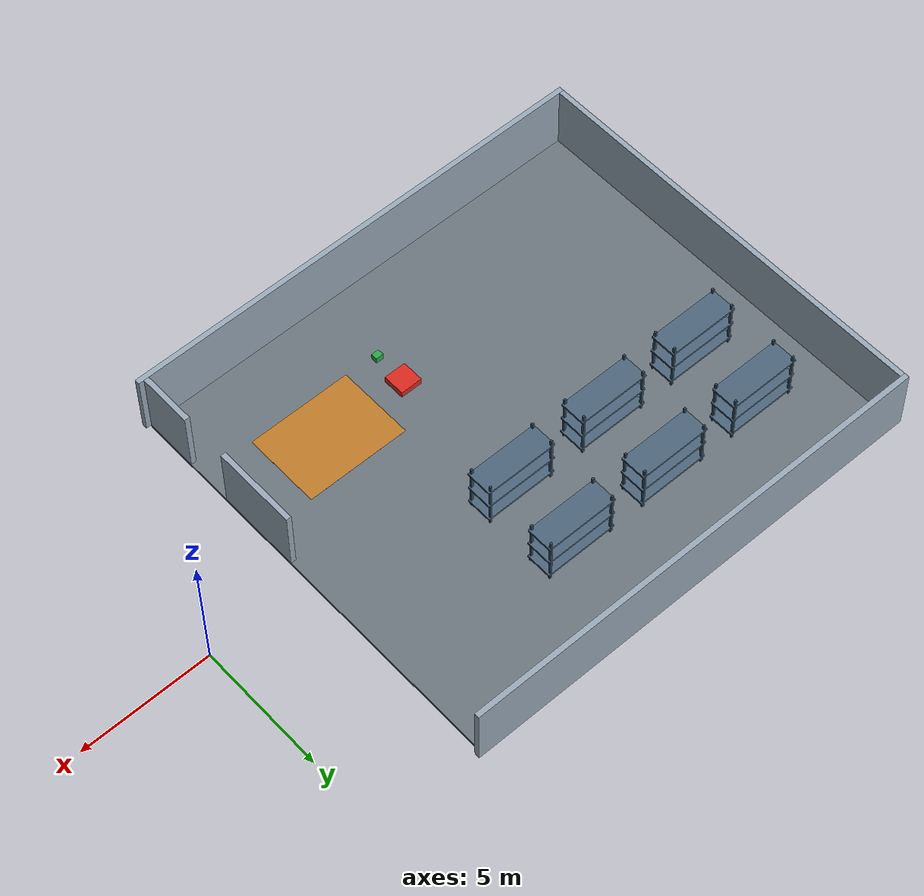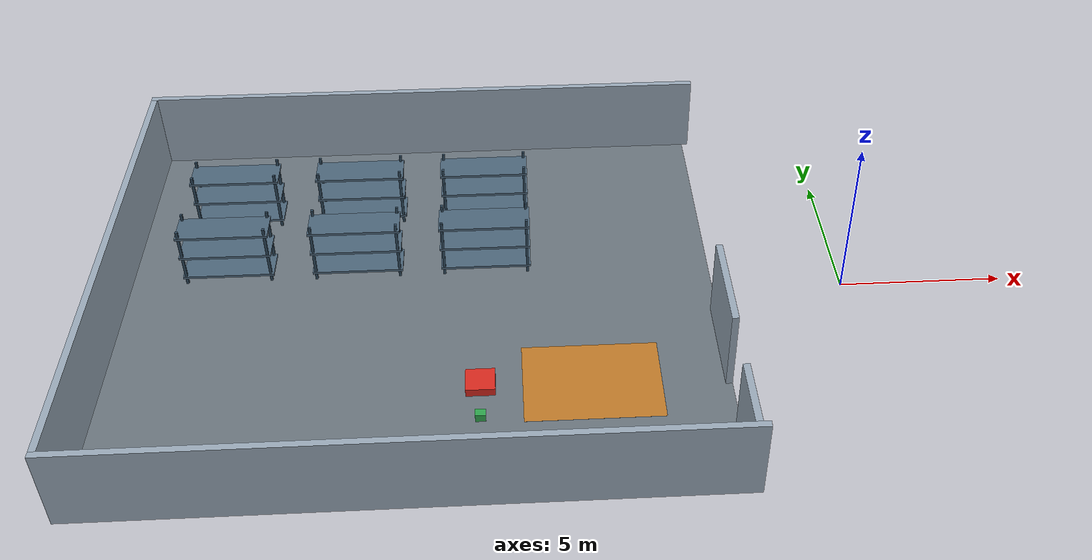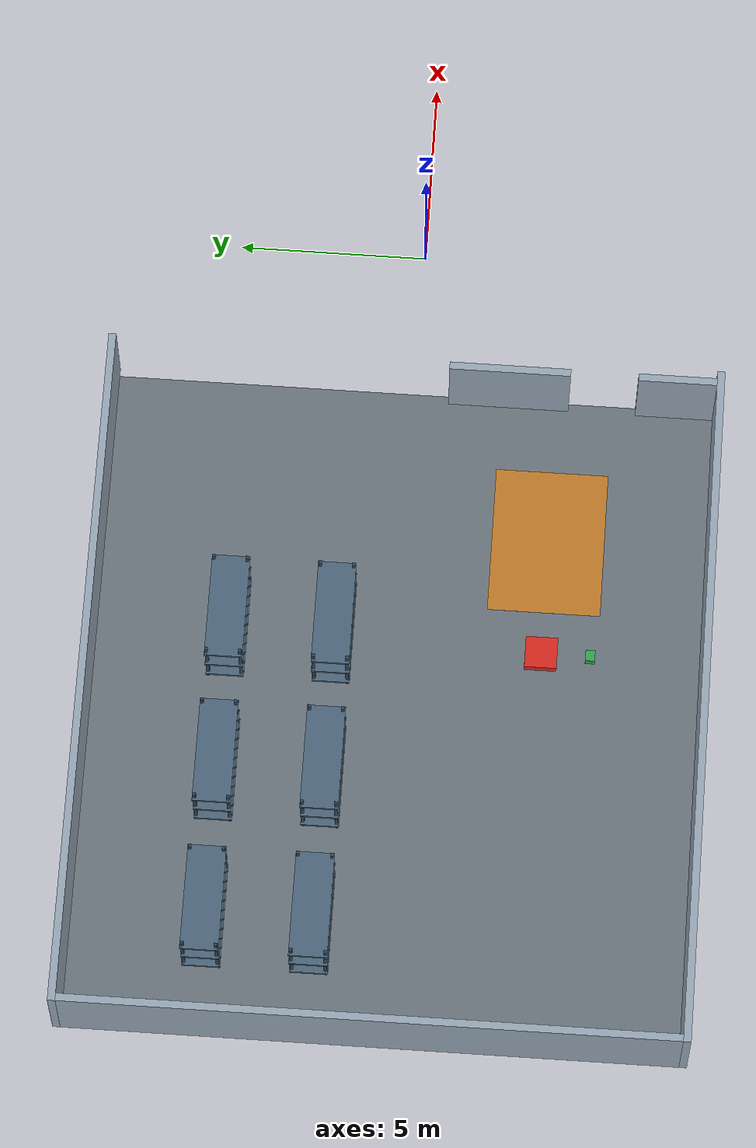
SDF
<sdf version="1.8">
 <world name="ax_test">
  <model name="floor_source">
   <static>true</static>
   <pose>-13 0 -0.050000000000000003 0 0 0</pose>
   <link name="body">
    <collision name="collision"><geometry><box><size>18 16 0.10000000000000001</size></box></geometry></collision>
    <visual name="visual">
     <geometry><box><size>18 16 0.10000000000000001</size></box></geometry>
     <material>
      <ambient>0.419999987 0.460000008 0.49000001 1</ambient>
      <diffuse>0.419999987 0.460000008 0.49000001 1</diffuse>
     </material>
     <cast_shadows>false</cast_shadows>
    </visual>
    <inertial>
     <mass>1</mass>
     <inertia><ixx>1</ixx><ixy>0</ixy><ixz>0</ixz><iyy>1</iyy><iyz>0</iyz><izz>1</izz></inertia>
    </inertial>
   </link>
  </model>
  <model name="wall_source_north">
   <static>true</static>
   <pose>-13 8.0999999999999996 1.25 0 0 0</pose>
   <link name="body">
    <collision name="collision">
     <geometry><box><size>18.399999999999999 0.20000000000000001 2.5</size></box></geometry>
    </collision>
    <visual name="visual">
     <geometry><box><size>18.399999999999999 0.20000000000000001 2.5</size></box></geometry>
     <material>
      <ambient>0.600000024 0.660000026 0.720000029 1</ambient>
      <diffuse>0.600000024 0.660000026 0.720000029 1</diffuse>
     </material>
     <cast_shadows>false</cast_shadows>
    </visual>
    <inertial>
     <mass>1</mass>
     <inertia><ixx>1</ixx><ixy>0</ixy><ixz>0</ixz><iyy>1</iyy><iyz>0</iyz><izz>1</izz></inertia>
    </inertial>
   </link>
  </model>
  <model name="wall_source_south">
   <static>true</static>
   <pose>-13 -8.0999999999999996 1.25 0 0 0</pose>
   <link name="body">
    <collision name="collision">
     <geometry><box><size>18.399999999999999 0.20000000000000001 2.5</size></box></geometry>
    </collision>
    <visual name="visual">
     <geometry><box><size>18.399999999999999 0.20000000000000001 2.5</size></box></geometry>
     <material>
      <ambient>0.600000024 0.660000026 0.720000029 1</ambient>
      <diffuse>0.600000024 0.660000026 0.720000029 1</diffuse>
     </material>
     <cast_shadows>false</cast_shadows>
    </visual>
    <inertial>
     <mass>1</mass>
     <inertia><ixx>1</ixx><ixy>0</ixy><ixz>0</ixz><iyy>1</iyy><iyz>0</iyz><izz>1</izz></inertia>
    </inertial>
   </link>
  </model>
  <model name="wall_source_outer">
   <static>true</static>
   <pose>-22.100000000000001 0 1.25 0 0 0</pose>
   <link name="body">
    <collision name="collision">
     <geometry><box><size>0.20000000000000001 16 2.5</size></box></geometry>
    </collision>
    <visual name="visual">
     <geometry><box><size>0.20000000000000001 16 2.5</size></box></geometry>
     <material>
      <ambient>0.600000024 0.660000026 0.720000029 1</ambient>
      <diffuse>0.600000024 0.660000026 0.720000029 1</diffuse>
     </material>
     <cast_shadows>false</cast_shadows>
    </visual>
    <inertial>
     <mass>1</mass>
     <inertia><ixx>1</ixx><ixy>0</ixy><ixz>0</ixz><iyy>1</iyy><iyz>0</iyz><izz>1</izz></inertia>
    </inertial>
   </link>
  </model>
  <model name="source_pickup_zone">
   <static>true</static>
   <pose>-8 -3.7999999999999998 0.001 0 0 0</pose>
   <link name="body">
    <visual name="visual">
     <geometry><box><size>4 3 0.002</size></box></geometry>
     <material>
      <ambient>0.75 0.479999989 0.159999996 1</ambient>
      <diffuse>0.75 0.479999989 0.159999996 1</diffuse>
     </material>
     <cast_shadows>false</cast_shadows>
    </visual>
    <inertial>
     <mass>1</mass>
     <inertia><ixx>1</ixx><ixy>0</ixy><ixz>0</ixz><iyy>1</iyy><iyz>0</iyz><izz>1</izz></inertia>
    </inertial>
   </link>
  </model>
  <model name="rack_-19.0_lower_leg_-1.3_-0.44">
   <static>true</static>
   <pose>-20.300000000000001 1.26 1 0 0 0</pose>
   <link name="body">
    <collision name="collision">
     <geometry><box><size>0.080000000000000002 0.080000000000000002 2</size></box></geometry>
    </collision>
    <visual name="visual">
     <geometry><box><size>0.080000000000000002 0.080000000000000002 2</size></box></geometry>
     <material>
      <ambient>0.180000007 0.280000001 0.360000014 1</ambient>
      <diffuse>0.180000007 0.280000001 0.360000014 1</diffuse>
     </material>
     <cast_shadows>false</cast_shadows>
    </visual>
    <inertial>
     <mass>1</mass>
     <inertia><ixx>1</ixx><ixy>0</ixy><ixz>0</ixz><iyy>1</iyy><iyz>0</iyz><izz>1</izz></inertia>
    </inertial>
   </link>
  </model>
  <model name="rack_-19.0_lower_leg_-1.3_0.44">
   <static>true</static>
   <pose>-20.300000000000001 2.1400000000000001 1 0 0 0</pose>
   <link name="body">
    <collision name="collision">
     <geometry><box><size>0.080000000000000002 0.080000000000000002 2</size></box></geometry>
    </collision>
    <visual name="visual">
     <geometry><box><size>0.080000000000000002 0.080000000000000002 2</size></box></geometry>
     <material>
      <ambient>0.180000007 0.280000001 0.360000014 1</ambient>
      <diffuse>0.180000007 0.280000001 0.360000014 1</diffuse>
     </material>
     <cast_shadows>false</cast_shadows>
    </visual>
    <inertial>
     <mass>1</mass>
     <inertia><ixx>1</ixx><ixy>0</ixy><ixz>0</ixz><iyy>1</iyy><iyz>0</iyz><izz>1</izz></inertia>
    </inertial>
   </link>
  </model>
  <model name="rack_-19.0_lower_leg_1.3_-0.44">
   <static>true</static>
   <pose>-17.699999999999999 1.26 1 0 0 0</pose>
   <link name="body">
    <collision name="collision">
     <geometry><box><size>0.080000000000000002 0.080000000000000002 2</size></box></geometry>
    </collision>
    <visual name="visual">
     <geometry><box><size>0.080000000000000002 0.080000000000000002 2</size></box></geometry>
     <material>
      <ambient>0.180000007 0.280000001 0.360000014 1</ambient>
      <diffuse>0.180000007 0.280000001 0.360000014 1</diffuse>
     </material>
     <cast_shadows>false</cast_shadows>
    </visual>
    <inertial>
     <mass>1</mass>
     <inertia><ixx>1</ixx><ixy>0</ixy><ixz>0</ixz><iyy>1</iyy><iyz>0</iyz><izz>1</izz></inertia>
    </inertial>
   </link>
  </model>
  <model name="rack_-19.0_lower_leg_1.3_0.44">
   <static>true</static>
   <pose>-17.699999999999999 2.1400000000000001 1 0 0 0</pose>
   <link name="body">
    <collision name="collision">
     <geometry><box><size>0.080000000000000002 0.080000000000000002 2</size></box></geometry>
    </collision>
    <visual name="visual">
     <geometry><box><size>0.080000000000000002 0.080000000000000002 2</size></box></geometry>
     <material>
      <ambient>0.180000007 0.280000001 0.360000014 1</ambient>
      <diffuse>0.180000007 0.280000001 0.360000014 1</diffuse>
     </material>
     <cast_shadows>false</cast_shadows>
    </visual>
    <inertial>
     <mass>1</mass>
     <inertia><ixx>1</ixx><ixy>0</ixy><ixz>0</ixz><iyy>1</iyy><iyz>0</iyz><izz>1</izz></inertia>
    </inertial>
   </link>
  </model>
  <model name="rack_-19.0_lower_shelf_0.25">
   <static>true</static>
   <pose>-19 1.7 0.25 0 0 0</pose>
   <link name="body">
    <collision name="collision">
     <geometry><box><size>2.7999999999999998 1 0.080000000000000002</size></box></geometry>
    </collision>
    <visual name="visual">
     <geometry><box><size>2.7999999999999998 1 0.080000000000000002</size></box></geometry>
     <material>
      <ambient>0.300000012 0.400000006 0.479999989 1</ambient>
      <diffuse>0.300000012 0.400000006 0.479999989 1</diffuse>
     </material>
     <cast_shadows>false</cast_shadows>
    </visual>
    <inertial>
     <mass>1</mass>
     <inertia><ixx>1</ixx><ixy>0</ixy><ixz>0</ixz><iyy>1</iyy><iyz>0</iyz><izz>1</izz></inertia>
    </inertial>
   </link>
  </model>
  <model name="rack_-19.0_lower_shelf_1.0">
   <static>true</static>
   <pose>-19 1.7 1 0 0 0</pose>
   <link name="body">
    <collision name="collision">
     <geometry><box><size>2.7999999999999998 1 0.080000000000000002</size></box></geometry>
    </collision>
    <visual name="visual">
     <geometry><box><size>2.7999999999999998 1 0.080000000000000002</size></box></geometry>
     <material>
      <ambient>0.300000012 0.400000006 0.479999989 1</ambient>
      <diffuse>0.300000012 0.400000006 0.479999989 1</diffuse>
     </material>
     <cast_shadows>false</cast_shadows>
    </visual>
    <inertial>
     <mass>1</mass>
     <inertia><ixx>1</ixx><ixy>0</ixy><ixz>0</ixz><iyy>1</iyy><iyz>0</iyz><izz>1</izz></inertia>
    </inertial>
   </link>
  </model>
  <model name="rack_-19.0_lower_shelf_1.75">
   <static>true</static>
   <pose>-19 1.7 1.75 0 0 0</pose>
   <link name="body">
    <collision name="collision">
     <geometry><box><size>2.7999999999999998 1 0.080000000000000002</size></box></geometry>
    </collision>
    <visual name="visual">
     <geometry><box><size>2.7999999999999998 1 0.080000000000000002</size></box></geometry>
     <material>
      <ambient>0.300000012 0.400000006 0.479999989 1</ambient>
      <diffuse>0.300000012 0.400000006 0.479999989 1</diffuse>
     </material>
     <cast_shadows>false</cast_shadows>
    </visual>
    <inertial>
     <mass>1</mass>
     <inertia><ixx>1</ixx><ixy>0</ixy><ixz>0</ixz><iyy>1</iyy><iyz>0</iyz><izz>1</izz></inertia>
    </inertial>
   </link>
  </model>
  <model name="rack_-19.0_upper_leg_-1.3_-0.44">
   <static>true</static>
   <pose>-20.300000000000001 4.0599999999999996 1 0 0 0</pose>
   <link name="body">
    <collision name="collision">
     <geometry><box><size>0.080000000000000002 0.080000000000000002 2</size></box></geometry>
    </collision>
    <visual name="visual">
     <geometry><box><size>0.080000000000000002 0.080000000000000002 2</size></box></geometry>
     <material>
      <ambient>0.180000007 0.280000001 0.360000014 1</ambient>
      <diffuse>0.180000007 0.280000001 0.360000014 1</diffuse>
     </material>
     <cast_shadows>false</cast_shadows>
    </visual>
    <inertial>
     <mass>1</mass>
     <inertia><ixx>1</ixx><ixy>0</ixy><ixz>0</ixz><iyy>1</iyy><iyz>0</iyz><izz>1</izz></inertia>
    </inertial>
   </link>
  </model>
  <model name="rack_-19.0_upper_leg_-1.3_0.44">
   <static>true</static>
   <pose>-20.300000000000001 4.9400000000000004 1 0 0 0</pose>
   <link name="body">
    <collision name="collision">
     <geometry><box><size>0.080000000000000002 0.080000000000000002 2</size></box></geometry>
    </collision>
    <visual name="visual">
     <geometry><box><size>0.080000000000000002 0.080000000000000002 2</size></box></geometry>
     <material>
      <ambient>0.180000007 0.280000001 0.360000014 1</ambient>
      <diffuse>0.180000007 0.280000001 0.360000014 1</diffuse>
     </material>
     <cast_shadows>false</cast_shadows>
    </visual>
    <inertial>
     <mass>1</mass>
     <inertia><ixx>1</ixx><ixy>0</ixy><ixz>0</ixz><iyy>1</iyy><iyz>0</iyz><izz>1</izz></inertia>
    </inertial>
   </link>
  </model>
  <model name="rack_-19.0_upper_leg_1.3_-0.44">
   <static>true</static>
   <pose>-17.699999999999999 4.0599999999999996 1 0 0 0</pose>
   <link name="body">
    <collision name="collision">
     <geometry><box><size>0.080000000000000002 0.080000000000000002 2</size></box></geometry>
    </collision>
    <visual name="visual">
     <geometry><box><size>0.080000000000000002 0.080000000000000002 2</size></box></geometry>
     <material>
      <ambient>0.180000007 0.280000001 0.360000014 1</ambient>
      <diffuse>0.180000007 0.280000001 0.360000014 1</diffuse>
     </material>
     <cast_shadows>false</cast_shadows>
    </visual>
    <inertial>
     <mass>1</mass>
     <inertia><ixx>1</ixx><ixy>0</ixy><ixz>0</ixz><iyy>1</iyy><iyz>0</iyz><izz>1</izz></inertia>
    </inertial>
   </link>
  </model>
  <model name="rack_-19.0_upper_leg_1.3_0.44">
   <static>true</static>
   <pose>-17.699999999999999 4.9400000000000004 1 0 0 0</pose>
   <link name="body">
    <collision name="collision">
     <geometry><box><size>0.080000000000000002 0.080000000000000002 2</size></box></geometry>
    </collision>
    <visual name="visual">
     <geometry><box><size>0.080000000000000002 0.080000000000000002 2</size></box></geometry>
     <material>
      <ambient>0.180000007 0.280000001 0.360000014 1</ambient>
      <diffuse>0.180000007 0.280000001 0.360000014 1</diffuse>
     </material>
     <cast_shadows>false</cast_shadows>
    </visual>
    <inertial>
     <mass>1</mass>
     <inertia><ixx>1</ixx><ixy>0</ixy><ixz>0</ixz><iyy>1</iyy><iyz>0</iyz><izz>1</izz></inertia>
    </inertial>
   </link>
  </model>
  <model name="rack_-19.0_upper_shelf_0.25">
   <static>true</static>
   <pose>-19 4.5 0.25 0 0 0</pose>
   <link name="body">
    <collision name="collision">
     <geometry><box><size>2.7999999999999998 1 0.080000000000000002</size></box></geometry>
    </collision>
    <visual name="visual">
     <geometry><box><size>2.7999999999999998 1 0.080000000000000002</size></box></geometry>
     <material>
      <ambient>0.300000012 0.400000006 0.479999989 1</ambient>
      <diffuse>0.300000012 0.400000006 0.479999989 1</diffuse>
     </material>
     <cast_shadows>false</cast_shadows>
    </visual>
    <inertial>
     <mass>1</mass>
     <inertia><ixx>1</ixx><ixy>0</ixy><ixz>0</ixz><iyy>1</iyy><iyz>0</iyz><izz>1</izz></inertia>
    </inertial>
   </link>
  </model>
  <model name="rack_-19.0_upper_shelf_1.0">
   <static>true</static>
   <pose>-19 4.5 1 0 0 0</pose>
   <link name="body">
    <collision name="collision">
     <geometry><box><size>2.7999999999999998 1 0.080000000000000002</size></box></geometry>
    </collision>
    <visual name="visual">
     <geometry><box><size>2.7999999999999998 1 0.080000000000000002</size></box></geometry>
     <material>
      <ambient>0.300000012 0.400000006 0.479999989 1</ambient>
      <diffuse>0.300000012 0.400000006 0.479999989 1</diffuse>
     </material>
     <cast_shadows>false</cast_shadows>
    </visual>
    <inertial>
     <mass>1</mass>
     <inertia><ixx>1</ixx><ixy>0</ixy><ixz>0</ixz><iyy>1</iyy><iyz>0</iyz><izz>1</izz></inertia>
    </inertial>
   </link>
  </model>
  <model name="rack_-19.0_upper_shelf_1.75">
   <static>true</static>
   <pose>-19 4.5 1.75 0 0 0</pose>
   <link name="body">
    <collision name="collision">
     <geometry><box><size>2.7999999999999998 1 0.080000000000000002</size></box></geometry>
    </collision>
    <visual name="visual">
     <geometry><box><size>2.7999999999999998 1 0.080000000000000002</size></box></geometry>
     <material>
      <ambient>0.300000012 0.400000006 0.479999989 1</ambient>
      <diffuse>0.300000012 0.400000006 0.479999989 1</diffuse>
     </material>
     <cast_shadows>false</cast_shadows>
    </visual>
    <inertial>
     <mass>1</mass>
     <inertia><ixx>1</ixx><ixy>0</ixy><ixz>0</ixz><iyy>1</iyy><iyz>0</iyz><izz>1</izz></inertia>
    </inertial>
   </link>
  </model>
  <model name="rack_-15.0_lower_leg_-1.3_-0.44">
   <static>true</static>
   <pose>-16.300000000000001 1.26 1 0 0 0</pose>
   <link name="body">
    <collision name="collision">
     <geometry><box><size>0.080000000000000002 0.080000000000000002 2</size></box></geometry>
    </collision>
    <visual name="visual">
     <geometry><box><size>0.080000000000000002 0.080000000000000002 2</size></box></geometry>
     <material>
      <ambient>0.180000007 0.280000001 0.360000014 1</ambient>
      <diffuse>0.180000007 0.280000001 0.360000014 1</diffuse>
     </material>
     <cast_shadows>false</cast_shadows>
    </visual>
    <inertial>
     <mass>1</mass>
     <inertia><ixx>1</ixx><ixy>0</ixy><ixz>0</ixz><iyy>1</iyy><iyz>0</iyz><izz>1</izz></inertia>
    </inertial>
   </link>
  </model>
  <model name="rack_-15.0_lower_leg_-1.3_0.44">
   <static>true</static>
   <pose>-16.300000000000001 2.1400000000000001 1 0 0 0</pose>
   <link name="body">
    <collision name="collision">
     <geometry><box><size>0.080000000000000002 0.080000000000000002 2</size></box></geometry>
    </collision>
    <visual name="visual">
     <geometry><box><size>0.080000000000000002 0.080000000000000002 2</size></box></geometry>
     <material>
      <ambient>0.180000007 0.280000001 0.360000014 1</ambient>
      <diffuse>0.180000007 0.280000001 0.360000014 1</diffuse>
     </material>
     <cast_shadows>false</cast_shadows>
    </visual>
    <inertial>
     <mass>1</mass>
     <inertia><ixx>1</ixx><ixy>0</ixy><ixz>0</ixz><iyy>1</iyy><iyz>0</iyz><izz>1</izz></inertia>
    </inertial>
   </link>
  </model>
  <model name="rack_-15.0_lower_leg_1.3_-0.44">
   <static>true</static>
   <pose>-13.699999999999999 1.26 1 0 0 0</pose>
   <link name="body">
    <collision name="collision">
     <geometry><box><size>0.080000000000000002 0.080000000000000002 2</size></box></geometry>
    </collision>
    <visual name="visual">
     <geometry><box><size>0.080000000000000002 0.080000000000000002 2</size></box></geometry>
     <material>
      <ambient>0.180000007 0.280000001 0.360000014 1</ambient>
      <diffuse>0.180000007 0.280000001 0.360000014 1</diffuse>
     </material>
     <cast_shadows>false</cast_shadows>
    </visual>
    <inertial>
     <mass>1</mass>
     <inertia><ixx>1</ixx><ixy>0</ixy><ixz>0</ixz><iyy>1</iyy><iyz>0</iyz><izz>1</izz></inertia>
    </inertial>
   </link>
  </model>
  <model name="rack_-15.0_lower_leg_1.3_0.44">
   <static>true</static>
   <pose>-13.699999999999999 2.1400000000000001 1 0 0 0</pose>
   <link name="body">
    <collision name="collision">
     <geometry><box><size>0.080000000000000002 0.080000000000000002 2</size></box></geometry>
    </collision>
    <visual name="visual">
     <geometry><box><size>0.080000000000000002 0.080000000000000002 2</size></box></geometry>
     <material>
      <ambient>0.180000007 0.280000001 0.360000014 1</ambient>
      <diffuse>0.180000007 0.280000001 0.360000014 1</diffuse>
     </material>
     <cast_shadows>false</cast_shadows>
    </visual>
    <inertial>
     <mass>1</mass>
     <inertia><ixx>1</ixx><ixy>0</ixy><ixz>0</ixz><iyy>1</iyy><iyz>0</iyz><izz>1</izz></inertia>
    </inertial>
   </link>
  </model>
  <model name="rack_-15.0_lower_shelf_0.25">
   <static>true</static>
   <pose>-15 1.7 0.25 0 0 0</pose>
   <link name="body">
    <collision name="collision">
     <geometry><box><size>2.7999999999999998 1 0.080000000000000002</size></box></geometry>
    </collision>
    <visual name="visual">
     <geometry><box><size>2.7999999999999998 1 0.080000000000000002</size></box></geometry>
     <material>
      <ambient>0.300000012 0.400000006 0.479999989 1</ambient>
      <diffuse>0.300000012 0.400000006 0.479999989 1</diffuse>
     </material>
     <cast_shadows>false</cast_shadows>
    </visual>
    <inertial>
     <mass>1</mass>
     <inertia><ixx>1</ixx><ixy>0</ixy><ixz>0</ixz><iyy>1</iyy><iyz>0</iyz><izz>1</izz></inertia>
    </inertial>
   </link>
  </model>
  <model name="rack_-15.0_lower_shelf_1.0">
   <static>true</static>
   <pose>-15 1.7 1 0 0 0</pose>
   <link name="body">
    <collision name="collision">
     <geometry><box><size>2.7999999999999998 1 0.080000000000000002</size></box></geometry>
    </collision>
    <visual name="visual">
     <geometry><box><size>2.7999999999999998 1 0.080000000000000002</size></box></geometry>
     <material>
      <ambient>0.300000012 0.400000006 0.479999989 1</ambient>
      <diffuse>0.300000012 0.400000006 0.479999989 1</diffuse>
     </material>
     <cast_shadows>false</cast_shadows>
    </visual>
    <inertial>
     <mass>1</mass>
     <inertia><ixx>1</ixx><ixy>0</ixy><ixz>0</ixz><iyy>1</iyy><iyz>0</iyz><izz>1</izz></inertia>
    </inertial>
   </link>
  </model>
  <model name="rack_-15.0_lower_shelf_1.75">
   <static>true</static>
   <pose>-15 1.7 1.75 0 0 0</pose>
   <link name="body">
    <collision name="collision">
     <geometry><box><size>2.7999999999999998 1 0.080000000000000002</size></box></geometry>
    </collision>
    <visual name="visual">
     <geometry><box><size>2.7999999999999998 1 0.080000000000000002</size></box></geometry>
     <material>
      <ambient>0.300000012 0.400000006 0.479999989 1</ambient>
      <diffuse>0.300000012 0.400000006 0.479999989 1</diffuse>
     </material>
     <cast_shadows>false</cast_shadows>
    </visual>
    <inertial>
     <mass>1</mass>
     <inertia><ixx>1</ixx><ixy>0</ixy><ixz>0</ixz><iyy>1</iyy><iyz>0</iyz><izz>1</izz></inertia>
    </inertial>
   </link>
  </model>
  <model name="rack_-15.0_upper_leg_-1.3_-0.44">
   <static>true</static>
   <pose>-16.300000000000001 4.0599999999999996 1 0 0 0</pose>
   <link name="body">
    <collision name="collision">
     <geometry><box><size>0.080000000000000002 0.080000000000000002 2</size></box></geometry>
    </collision>
    <visual name="visual">
     <geometry><box><size>0.080000000000000002 0.080000000000000002 2</size></box></geometry>
     <material>
      <ambient>0.180000007 0.280000001 0.360000014 1</ambient>
      <diffuse>0.180000007 0.280000001 0.360000014 1</diffuse>
     </material>
     <cast_shadows>false</cast_shadows>
    </visual>
    <inertial>
     <mass>1</mass>
     <inertia><ixx>1</ixx><ixy>0</ixy><ixz>0</ixz><iyy>1</iyy><iyz>0</iyz><izz>1</izz></inertia>
    </inertial>
   </link>
  </model>
  <model name="rack_-15.0_upper_leg_-1.3_0.44">
   <static>true</static>
   <pose>-16.300000000000001 4.9400000000000004 1 0 0 0</pose>
   <link name="body">
    <collision name="collision">
     <geometry><box><size>0.080000000000000002 0.080000000000000002 2</size></box></geometry>
    </collision>
    <visual name="visual">
     <geometry><box><size>0.080000000000000002 0.080000000000000002 2</size></box></geometry>
     <material>
      <ambient>0.180000007 0.280000001 0.360000014 1</ambient>
      <diffuse>0.180000007 0.280000001 0.360000014 1</diffuse>
     </material>
     <cast_shadows>false</cast_shadows>
    </visual>
    <inertial>
     <mass>1</mass>
     <inertia><ixx>1</ixx><ixy>0</ixy><ixz>0</ixz><iyy>1</iyy><iyz>0</iyz><izz>1</izz></inertia>
    </inertial>
   </link>
  </model>
  <model name="rack_-15.0_upper_leg_1.3_-0.44">
   <static>true</static>
   <pose>-13.699999999999999 4.0599999999999996 1 0 0 0</pose>
   <link name="body">
    <collision name="collision">
     <geometry><box><size>0.080000000000000002 0.080000000000000002 2</size></box></geometry>
    </collision>
    <visual name="visual">
     <geometry><box><size>0.080000000000000002 0.080000000000000002 2</size></box></geometry>
     <material>
      <ambient>0.180000007 0.280000001 0.360000014 1</ambient>
      <diffuse>0.180000007 0.280000001 0.360000014 1</diffuse>
     </material>
     <cast_shadows>false</cast_shadows>
    </visual>
    <inertial>
     <mass>1</mass>
     <inertia><ixx>1</ixx><ixy>0</ixy><ixz>0</ixz><iyy>1</iyy><iyz>0</iyz><izz>1</izz></inertia>
    </inertial>
   </link>
  </model>
  <model name="rack_-15.0_upper_leg_1.3_0.44">
   <static>true</static>
   <pose>-13.699999999999999 4.9400000000000004 1 0 0 0</pose>
   <link name="body">
    <collision name="collision">
     <geometry><box><size>0.080000000000000002 0.080000000000000002 2</size></box></geometry>
    </collision>
    <visual name="visual">
     <geometry><box><size>0.080000000000000002 0.080000000000000002 2</size></box></geometry>
     <material>
      <ambient>0.180000007 0.280000001 0.360000014 1</ambient>
      <diffuse>0.180000007 0.280000001 0.360000014 1</diffuse>
     </material>
     <cast_shadows>false</cast_shadows>
    </visual>
    <inertial>
     <mass>1</mass>
     <inertia><ixx>1</ixx><ixy>0</ixy><ixz>0</ixz><iyy>1</iyy><iyz>0</iyz><izz>1</izz></inertia>
    </inertial>
   </link>
  </model>
  <model name="rack_-15.0_upper_shelf_0.25">
   <static>true</static>
   <pose>-15 4.5 0.25 0 0 0</pose>
   <link name="body">
    <collision name="collision">
     <geometry><box><size>2.7999999999999998 1 0.080000000000000002</size></box></geometry>
    </collision>
    <visual name="visual">
     <geometry><box><size>2.7999999999999998 1 0.080000000000000002</size></box></geometry>
     <material>
      <ambient>0.300000012 0.400000006 0.479999989 1</ambient>
      <diffuse>0.300000012 0.400000006 0.479999989 1</diffuse>
     </material>
     <cast_shadows>false</cast_shadows>
    </visual>
    <inertial>
     <mass>1</mass>
     <inertia><ixx>1</ixx><ixy>0</ixy><ixz>0</ixz><iyy>1</iyy><iyz>0</iyz><izz>1</izz></inertia>
    </inertial>
   </link>
  </model>
  <model name="rack_-15.0_upper_shelf_1.0">
   <static>true</static>
   <pose>-15 4.5 1 0 0 0</pose>
   <link name="body">
    <collision name="collision">
     <geometry><box><size>2.7999999999999998 1 0.080000000000000002</size></box></geometry>
    </collision>
    <visual name="visual">
     <geometry><box><size>2.7999999999999998 1 0.080000000000000002</size></box></geometry>
     <material>
      <ambient>0.300000012 0.400000006 0.479999989 1</ambient>
      <diffuse>0.300000012 0.400000006 0.479999989 1</diffuse>
     </material>
     <cast_shadows>false</cast_shadows>
    </visual>
    <inertial>
     <mass>1</mass>
     <inertia><ixx>1</ixx><ixy>0</ixy><ixz>0</ixz><iyy>1</iyy><iyz>0</iyz><izz>1</izz></inertia>
    </inertial>
   </link>
  </model>
  <model name="rack_-15.0_upper_shelf_1.75">
   <static>true</static>
   <pose>-15 4.5 1.75 0 0 0</pose>
   <link name="body">
    <collision name="collision">
     <geometry><box><size>2.7999999999999998 1 0.080000000000000002</size></box></geometry>
    </collision>
    <visual name="visual">
     <geometry><box><size>2.7999999999999998 1 0.080000000000000002</size></box></geometry>
     <material>
      <ambient>0.300000012 0.400000006 0.479999989 1</ambient>
      <diffuse>0.300000012 0.400000006 0.479999989 1</diffuse>
     </material>
     <cast_shadows>false</cast_shadows>
    </visual>
    <inertial>
     <mass>1</mass>
     <inertia><ixx>1</ixx><ixy>0</ixy><ixz>0</ixz><iyy>1</iyy><iyz>0</iyz><izz>1</izz></inertia>
    </inertial>
   </link>
  </model>
  <model name="rack_-11.0_lower_leg_-1.3_-0.44">
   <static>true</static>
   <pose>-12.300000000000001 1.26 1 0 0 0</pose>
   <link name="body">
    <collision name="collision">
     <geometry><box><size>0.080000000000000002 0.080000000000000002 2</size></box></geometry>
    </collision>
    <visual name="visual">
     <geometry><box><size>0.080000000000000002 0.080000000000000002 2</size></box></geometry>
     <material>
      <ambient>0.180000007 0.280000001 0.360000014 1</ambient>
      <diffuse>0.180000007 0.280000001 0.360000014 1</diffuse>
     </material>
     <cast_shadows>false</cast_shadows>
    </visual>
    <inertial>
     <mass>1</mass>
     <inertia><ixx>1</ixx><ixy>0</ixy><ixz>0</ixz><iyy>1</iyy><iyz>0</iyz><izz>1</izz></inertia>
    </inertial>
   </link>
  </model>
  <model name="rack_-11.0_lower_leg_-1.3_0.44">
   <static>true</static>
   <pose>-12.300000000000001 2.1400000000000001 1 0 0 0</pose>
   <link name="body">
    <collision name="collision">
     <geometry><box><size>0.080000000000000002 0.080000000000000002 2</size></box></geometry>
    </collision>
    <visual name="visual">
     <geometry><box><size>0.080000000000000002 0.080000000000000002 2</size></box></geometry>
     <material>
      <ambient>0.180000007 0.280000001 0.360000014 1</ambient>
      <diffuse>0.180000007 0.280000001 0.360000014 1</diffuse>
     </material>
     <cast_shadows>false</cast_shadows>
    </visual>
    <inertial>
     <mass>1</mass>
     <inertia><ixx>1</ixx><ixy>0</ixy><ixz>0</ixz><iyy>1</iyy><iyz>0</iyz><izz>1</izz></inertia>
    </inertial>
   </link>
  </model>
  <model name="rack_-11.0_lower_leg_1.3_-0.44">
   <static>true</static>
   <pose>-9.6999999999999993 1.26 1 0 0 0</pose>
   <link name="body">
    <collision name="collision">
     <geometry><box><size>0.080000000000000002 0.080000000000000002 2</size></box></geometry>
    </collision>
    <visual name="visual">
     <geometry><box><size>0.080000000000000002 0.080000000000000002 2</size></box></geometry>
     <material>
      <ambient>0.180000007 0.280000001 0.360000014 1</ambient>
      <diffuse>0.180000007 0.280000001 0.360000014 1</diffuse>
     </material>
     <cast_shadows>false</cast_shadows>
    </visual>
    <inertial>
     <mass>1</mass>
     <inertia><ixx>1</ixx><ixy>0</ixy><ixz>0</ixz><iyy>1</iyy><iyz>0</iyz><izz>1</izz></inertia>
    </inertial>
   </link>
  </model>
  <model name="rack_-11.0_lower_leg_1.3_0.44">
   <static>true</static>
   <pose>-9.6999999999999993 2.1400000000000001 1 0 0 0</pose>
   <link name="body">
    <collision name="collision">
     <geometry><box><size>0.080000000000000002 0.080000000000000002 2</size></box></geometry>
    </collision>
    <visual name="visual">
     <geometry><box><size>0.080000000000000002 0.080000000000000002 2</size></box></geometry>
     <material>
      <ambient>0.180000007 0.280000001 0.360000014 1</ambient>
      <diffuse>0.180000007 0.280000001 0.360000014 1</diffuse>
     </material>
     <cast_shadows>false</cast_shadows>
    </visual>
    <inertial>
     <mass>1</mass>
     <inertia><ixx>1</ixx><ixy>0</ixy><ixz>0</ixz><iyy>1</iyy><iyz>0</iyz><izz>1</izz></inertia>
    </inertial>
   </link>
  </model>
  <model name="rack_-11.0_lower_shelf_0.25">
   <static>true</static>
   <pose>-11 1.7 0.25 0 0 0</pose>
   <link name="body">
    <collision name="collision">
     <geometry><box><size>2.7999999999999998 1 0.080000000000000002</size></box></geometry>
    </collision>
    <visual name="visual">
     <geometry><box><size>2.7999999999999998 1 0.080000000000000002</size></box></geometry>
     <material>
      <ambient>0.300000012 0.400000006 0.479999989 1</ambient>
      <diffuse>0.300000012 0.400000006 0.479999989 1</diffuse>
     </material>
     <cast_shadows>false</cast_shadows>
    </visual>
    <inertial>
     <mass>1</mass>
     <inertia><ixx>1</ixx><ixy>0</ixy><ixz>0</ixz><iyy>1</iyy><iyz>0</iyz><izz>1</izz></inertia>
    </inertial>
   </link>
  </model>
  <model name="rack_-11.0_lower_shelf_1.0">
   <static>true</static>
   <pose>-11 1.7 1 0 0 0</pose>
   <link name="body">
    <collision name="collision">
     <geometry><box><size>2.7999999999999998 1 0.080000000000000002</size></box></geometry>
    </collision>
    <visual name="visual">
     <geometry><box><size>2.7999999999999998 1 0.080000000000000002</size></box></geometry>
     <material>
      <ambient>0.300000012 0.400000006 0.479999989 1</ambient>
      <diffuse>0.300000012 0.400000006 0.479999989 1</diffuse>
     </material>
     <cast_shadows>false</cast_shadows>
    </visual>
    <inertial>
     <mass>1</mass>
     <inertia><ixx>1</ixx><ixy>0</ixy><ixz>0</ixz><iyy>1</iyy><iyz>0</iyz><izz>1</izz></inertia>
    </inertial>
   </link>
  </model>
  <model name="rack_-11.0_lower_shelf_1.75">
   <static>true</static>
   <pose>-11 1.7 1.75 0 0 0</pose>
   <link name="body">
    <collision name="collision">
     <geometry><box><size>2.7999999999999998 1 0.080000000000000002</size></box></geometry>
    </collision>
    <visual name="visual">
     <geometry><box><size>2.7999999999999998 1 0.080000000000000002</size></box></geometry>
     <material>
      <ambient>0.300000012 0.400000006 0.479999989 1</ambient>
      <diffuse>0.300000012 0.400000006 0.479999989 1</diffuse>
     </material>
     <cast_shadows>false</cast_shadows>
    </visual>
    <inertial>
     <mass>1</mass>
     <inertia><ixx>1</ixx><ixy>0</ixy><ixz>0</ixz><iyy>1</iyy><iyz>0</iyz><izz>1</izz></inertia>
    </inertial>
   </link>
  </model>
  <model name="rack_-11.0_upper_leg_-1.3_-0.44">
   <static>true</static>
   <pose>-12.300000000000001 4.0599999999999996 1 0 0 0</pose>
   <link name="body">
    <collision name="collision">
     <geometry><box><size>0.080000000000000002 0.080000000000000002 2</size></box></geometry>
    </collision>
    <visual name="visual">
     <geometry><box><size>0.080000000000000002 0.080000000000000002 2</size></box></geometry>
     <material>
      <ambient>0.180000007 0.280000001 0.360000014 1</ambient>
      <diffuse>0.180000007 0.280000001 0.360000014 1</diffuse>
     </material>
     <cast_shadows>false</cast_shadows>
    </visual>
    <inertial>
     <mass>1</mass>
     <inertia><ixx>1</ixx><ixy>0</ixy><ixz>0</ixz><iyy>1</iyy><iyz>0</iyz><izz>1</izz></inertia>
    </inertial>
   </link>
  </model>
  <model name="rack_-11.0_upper_leg_-1.3_0.44">
   <static>true</static>
   <pose>-12.300000000000001 4.9400000000000004 1 0 0 0</pose>
   <link name="body">
    <collision name="collision">
     <geometry><box><size>0.080000000000000002 0.080000000000000002 2</size></box></geometry>
    </collision>
    <visual name="visual">
     <geometry><box><size>0.080000000000000002 0.080000000000000002 2</size></box></geometry>
     <material>
      <ambient>0.180000007 0.280000001 0.360000014 1</ambient>
      <diffuse>0.180000007 0.280000001 0.360000014 1</diffuse>
     </material>
     <cast_shadows>false</cast_shadows>
    </visual>
    <inertial>
     <mass>1</mass>
     <inertia><ixx>1</ixx><ixy>0</ixy><ixz>0</ixz><iyy>1</iyy><iyz>0</iyz><izz>1</izz></inertia>
    </inertial>
   </link>
  </model>
  <model name="rack_-11.0_upper_leg_1.3_-0.44">
   <static>true</static>
   <pose>-9.6999999999999993 4.0599999999999996 1 0 0 0</pose>
   <link name="body">
    <collision name="collision">
     <geometry><box><size>0.080000000000000002 0.080000000000000002 2</size></box></geometry>
    </collision>
    <visual name="visual">
     <geometry><box><size>0.080000000000000002 0.080000000000000002 2</size></box></geometry>
     <material>
      <ambient>0.180000007 0.280000001 0.360000014 1</ambient>
      <diffuse>0.180000007 0.280000001 0.360000014 1</diffuse>
     </material>
     <cast_shadows>false</cast_shadows>
    </visual>
    <inertial>
     <mass>1</mass>
     <inertia><ixx>1</ixx><ixy>0</ixy><ixz>0</ixz><iyy>1</iyy><iyz>0</iyz><izz>1</izz></inertia>
    </inertial>
   </link>
  </model>
  <model name="rack_-11.0_upper_leg_1.3_0.44">
   <static>true</static>
   <pose>-9.6999999999999993 4.9400000000000004 1 0 0 0</pose>
   <link name="body">
    <collision name="collision">
     <geometry><box><size>0.080000000000000002 0.080000000000000002 2</size></box></geometry>
    </collision>
    <visual name="visual">
     <geometry><box><size>0.080000000000000002 0.080000000000000002 2</size></box></geometry>
     <material>
      <ambient>0.180000007 0.280000001 0.360000014 1</ambient>
      <diffuse>0.180000007 0.280000001 0.360000014 1</diffuse>
     </material>
     <cast_shadows>false</cast_shadows>
    </visual>
    <inertial>
     <mass>1</mass>
     <inertia><ixx>1</ixx><ixy>0</ixy><ixz>0</ixz><iyy>1</iyy><iyz>0</iyz><izz>1</izz></inertia>
    </inertial>
   </link>
  </model>
  <model name="rack_-11.0_upper_shelf_0.25">
   <static>true</static>
   <pose>-11 4.5 0.25 0 0 0</pose>
   <link name="body">
    <collision name="collision">
     <geometry><box><size>2.7999999999999998 1 0.080000000000000002</size></box></geometry>
    </collision>
    <visual name="visual">
     <geometry><box><size>2.7999999999999998 1 0.080000000000000002</size></box></geometry>
     <material>
      <ambient>0.300000012 0.400000006 0.479999989 1</ambient>
      <diffuse>0.300000012 0.400000006 0.479999989 1</diffuse>
     </material>
     <cast_shadows>false</cast_shadows>
    </visual>
    <inertial>
     <mass>1</mass>
     <inertia><ixx>1</ixx><ixy>0</ixy><ixz>0</ixz><iyy>1</iyy><iyz>0</iyz><izz>1</izz></inertia>
    </inertial>
   </link>
  </model>
  <model name="rack_-11.0_upper_shelf_1.0">
   <static>true</static>
   <pose>-11 4.5 1 0 0 0</pose>
   <link name="body">
    <collision name="collision">
     <geometry><box><size>2.7999999999999998 1 0.080000000000000002</size></box></geometry>
    </collision>
    <visual name="visual">
     <geometry><box><size>2.7999999999999998 1 0.080000000000000002</size></box></geometry>
     <material>
      <ambient>0.300000012 0.400000006 0.479999989 1</ambient>
      <diffuse>0.300000012 0.400000006 0.479999989 1</diffuse>
     </material>
     <cast_shadows>false</cast_shadows>
    </visual>
    <inertial>
     <mass>1</mass>
     <inertia><ixx>1</ixx><ixy>0</ixy><ixz>0</ixz><iyy>1</iyy><iyz>0</iyz><izz>1</izz></inertia>
    </inertial>
   </link>
  </model>
  <model name="rack_-11.0_upper_shelf_1.75">
   <static>true</static>
   <pose>-11 4.5 1.75 0 0 0</pose>
   <link name="body">
    <collision name="collision">
     <geometry><box><size>2.7999999999999998 1 0.080000000000000002</size></box></geometry>
    </collision>
    <visual name="visual">
     <geometry><box><size>2.7999999999999998 1 0.080000000000000002</size></box></geometry>
     <material>
      <ambient>0.300000012 0.400000006 0.479999989 1</ambient>
      <diffuse>0.300000012 0.400000006 0.479999989 1</diffuse>
     </material>
     <cast_shadows>false</cast_shadows>
    </visual>
    <inertial>
     <mass>1</mass>
     <inertia><ixx>1</ixx><ixy>0</ixy><ixz>0</ixz><iyy>1</iyy><iyz>0</iyz><izz>1</izz></inertia>
    </inertial>
   </link>
  </model>
  <model name="wall_source_door_section_1">
   <static>true</static>
   <pose>-4.0999999999999996 -6.9606718564090908 1.25 0 0 0</pose>
   <link name="body">
    <collision name="collision">
     <geometry><box><size>0.20000000000000001 2.0786562871818193 2.5</size></box></geometry>
    </collision>
    <visual name="visual">
     <geometry><box><size>0.20000000000000001 2.0786562871818193 2.5</size></box></geometry>
     <material>
      <ambient>0.600000024 0.660000026 0.720000029 1</ambient>
      <diffuse>0.600000024 0.660000026 0.720000029 1</diffuse>
     </material>
     <cast_shadows>false</cast_shadows>
    </visual>
    <inertial>
     <mass>1</mass>
     <inertia><ixx>1</ixx><ixy>0</ixy><ixz>0</ixz><iyy>1</iyy><iyz>0</iyz><izz>1</izz></inertia>
    </inertial>
   </link>
  </model>
  <model name="wall_source_door_section_2">
   <static>true</static>
   <pose>-4.0999999999999996 -2.5106718564090902 1.25 0 0 0</pose>
   <link name="body">
    <collision name="collision">
     <geometry><box><size>0.20000000000000001 3.2213437128181801 2.5</size></box></geometry>
    </collision>
    <visual name="visual">
     <geometry><box><size>0.20000000000000001 3.2213437128181801 2.5</size></box></geometry>
     <material>
      <ambient>0.600000024 0.660000026 0.720000029 1</ambient>
      <diffuse>0.600000024 0.660000026 0.720000029 1</diffuse>
     </material>
     <cast_shadows>false</cast_shadows>
    </visual>
    <inertial>
     <mass>1</mass>
     <inertia><ixx>1</ixx><ixy>0</ixy><ixz>0</ixz><iyy>1</iyy><iyz>0</iyz><izz>1</izz></inertia>
    </inertial>
   </link>
  </model>
  <model name="sample_fit_medium_01">
   <static>false</static>
   <pose>-11.200000 -5.100000 0.122000 0.000000 0.000000 0.000000</pose>
   <link name="body">
    <inertial>
     <mass>0.36</mass>
     <inertia>
      <ixx>0.003603</ixx>
      <iyy>0.0044280000000000005</iyy>
      <izz>0.004575</izz>
      <ixy>0</ixy>
      <ixz>0</ixz>
      <iyz>0</iyz>
     </inertia>
    </inertial>
    <collision name="collision"><geometry><box><size>0.3 0.25 0.24</size></box></geometry></collision>
    <visual name="visual">
     <geometry><box><size>0.3 0.25 0.24</size></box></geometry>
     <material><ambient>0.18 0.65 0.30 1</ambient><diffuse>0.18 0.65 0.30 1</diffuse></material>
    </visual>
   </link>
  </model>
  <model name="sample_reject_wide_01">
   <static>false</static>
   <pose>-11.200000 -3.800000 0.127000 0.000000 0.000000 0.000000</pose>
   <link name="body">
    <inertial>
     <mass>2.0</mass>
     <inertia>
      <ixx>0.13083333333333333</ixx>
      <iyy>0.13083333333333333</iyy>
      <izz>0.24083333333333332</izz>
      <ixy>0</ixy>
      <ixz>0</ixz>
      <iyz>0</iyz>
     </inertia>
    </inertial>
    <collision name="collision"><geometry><box><size>0.85 0.85 0.25</size></box></geometry></collision>
    <visual name="visual">
     <geometry><box><size>0.85 0.85 0.25</size></box></geometry>
     <material><ambient>0.85 0.16 0.12 1</ambient><diffuse>0.85 0.16 0.12 1</diffuse></material>
    </visual>
   </link>
  </model>
 </world>
</sdf>
